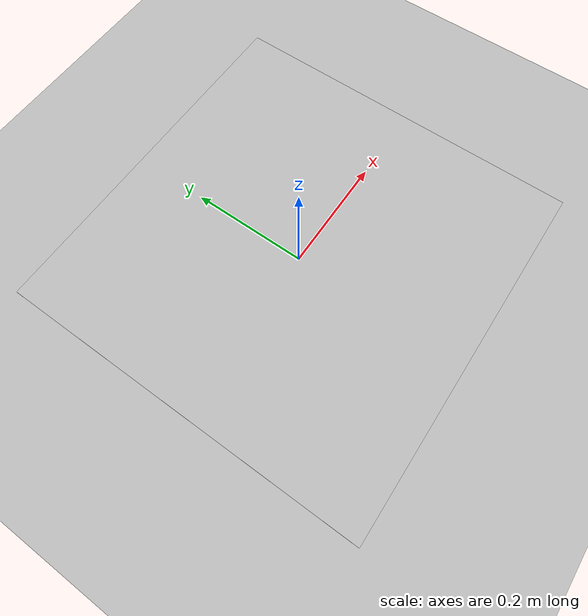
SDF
<?xml version="1.0" ?>
<sdf version="1.5">
  <world name="default">
    <!-- A global light source -->
    <include>
      <uri>model://sun</uri>
    </include>
    <!-- A ground plane -->
    <include>
      <uri>model://ground_plane</uri>
    </include>
    <include>
      <uri>model://lawn_plane</uri>
    </include>
    <include>
      <uri>model://qrcode_cube_10cm</uri>
    </include>
    <physics name='default_physics' default='0' type='ode'>
      <gravity>0 0 -9.8066</gravity>
      <ode>
        <solver>
          <type>quick</type>
          <iters>10</iters>
          <sor>1.3</sor>
          <use_dynamic_moi_rescaling>0</use_dynamic_moi_rescaling>
        </solver>
        <constraints>
          <cfm>0</cfm>
          <erp>0.2</erp>
          <contact_max_correcting_vel>100</contact_max_correcting_vel>
          <contact_surface_layer>0.001</contact_surface_layer>
        </constraints>
      </ode>
      <max_step_size>0.004</max_step_size>
      <real_time_factor>1</real_time_factor>
      <real_time_update_rate>250</real_time_update_rate>
      <magnetic_field>6.0e-6 2.3e-5 -4.2e-5</magnetic_field>
    </physics>
  </world>
</sdf>

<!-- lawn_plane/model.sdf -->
<sdf version="1.5">
  <model name="lawn_plane">
    <static>true</static>
    <link name="link">
      <collision name="collision">
        <geometry>
          <box>
            <size>20 20 .1</size>
          </box>
        </geometry>
      </collision>
      <visual name="visual">
        <cast_shadows>false</cast_shadows>
        <geometry>
          <box>
            <size>20 20 .1</size>
          </box>
        </geometry>
        <material>
          <script>
            <uri>model://lawn_plane/materials/scripts</uri>
            <uri>model://lawn_plane/materials/textures</uri>
            <name>vrc/lawn</name>
          </script>
        </material>
      </visual>
    </link>
  </model>
</sdf>

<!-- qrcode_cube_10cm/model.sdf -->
<sdf version="1.5">
  <model name="qrcode_cube_10cm">
    <link name="link">
      <pose>0 0 0.05 0 0 0</pose>
      <inertial>
        <mass>0.5167</mass>
        <inertia>
          <ixx>0.0008611666666666669</ixx>
          <ixy>0</ixy>
          <ixz>0</ixz>
          <iyy>0.0008611666666666669</iyy>
          <iyz>0</iyz>
          <izz>0.0008611666666666669</izz>
        </inertia>
      </inertial>

      <collision name="collision">
        <geometry>
          <box>
            <size>0.2 0.2 0.002</size>
          </box>
        </geometry>
        <surface>
          <contact>
            <poissons_ratio>0.347</poissons_ratio>
            <elastic_modulus>8.8e+09</elastic_modulus>
            <ode>
              <kp>100000</kp>
              <kd>100</kd>
              <max_vel>100.0</max_vel>
              <min_depth>0.001</min_depth>
            </ode>
          </contact>
          <friction>
            <torsional>
              <coefficient>1.0</coefficient>
              <use_patch_radius>0</use_patch_radius>
              <surface_radius>0.01</surface_radius>
            </torsional>
          </friction>
        </surface>
      </collision>

      <visual name="visual">
        <geometry>
          <box>
            <size>0.6 0.6 0.002</size>
          </box>
        </geometry>
        <material>
          <script>
            <uri>model://qrcode_cube_10cm/materials/scripts</uri>
	    <uri>model://qrcode_cube_10cm/materials/textures</uri>
            <name>Cube/QRCode</name>
          </script>
        </material>
      </visual>

    </link>
  </model>
</sdf>
